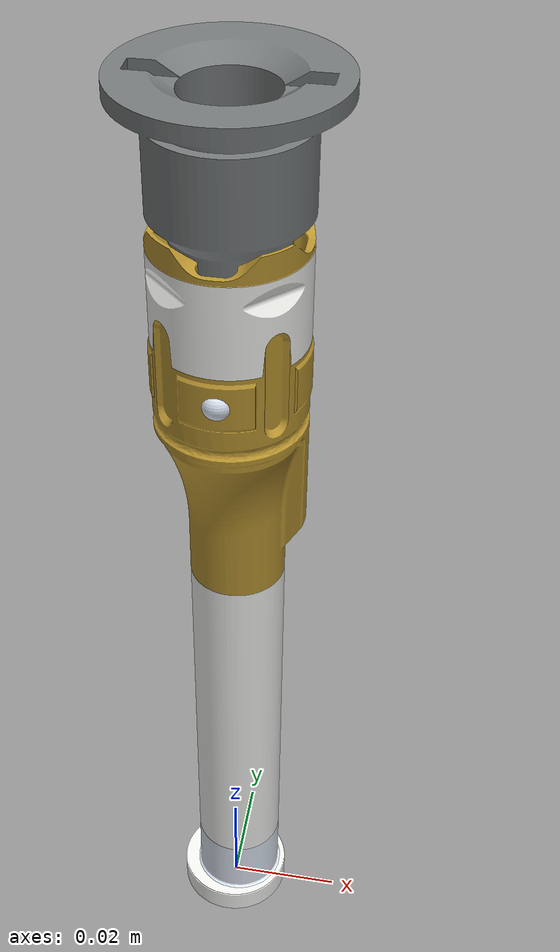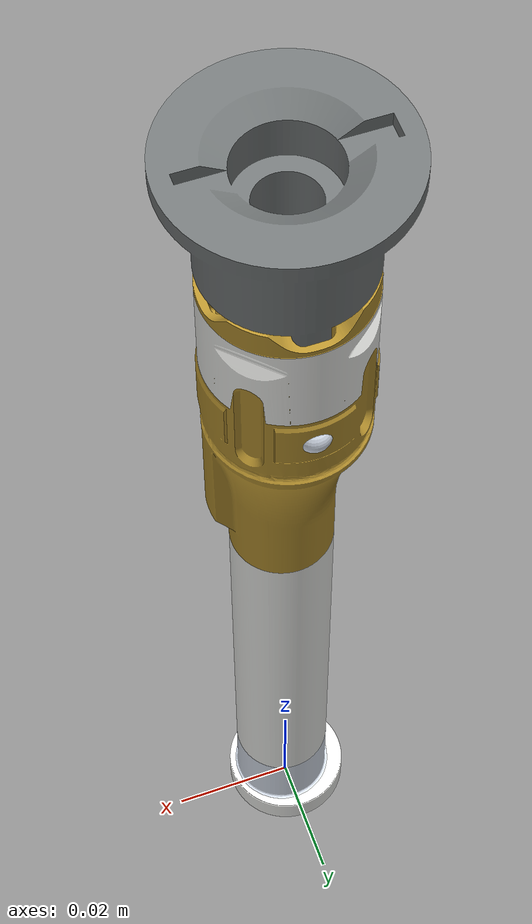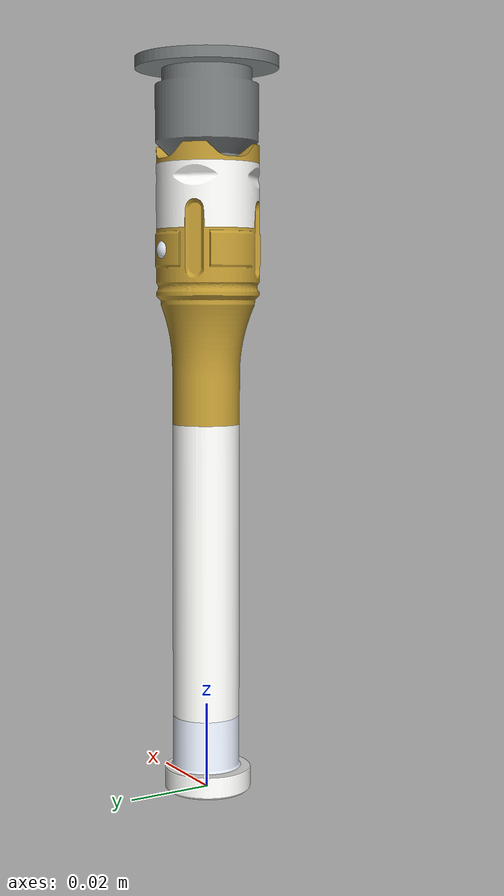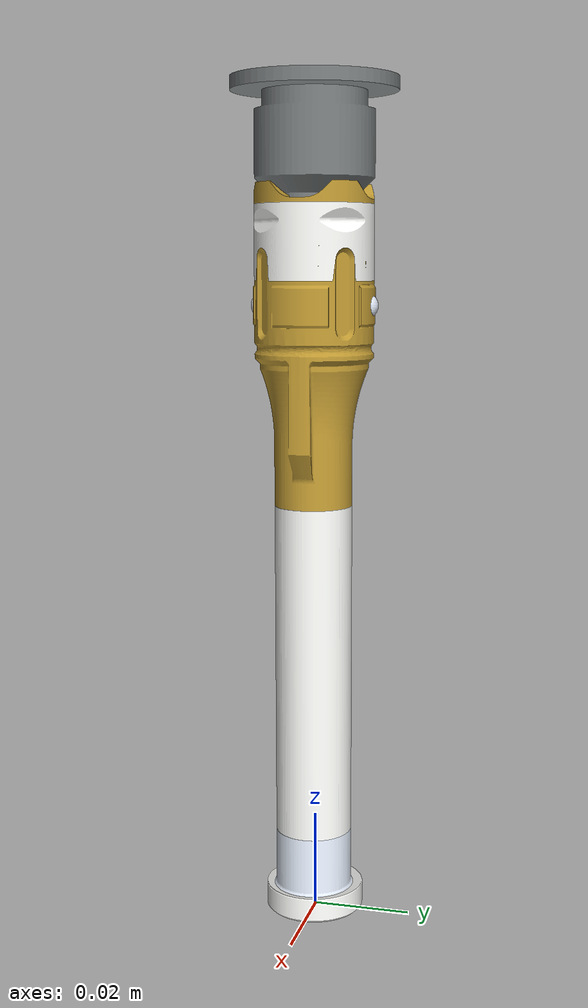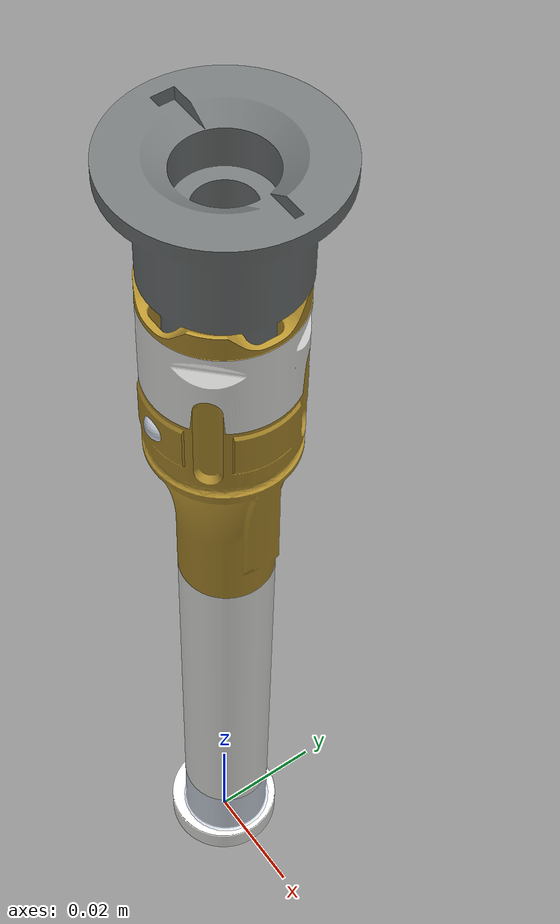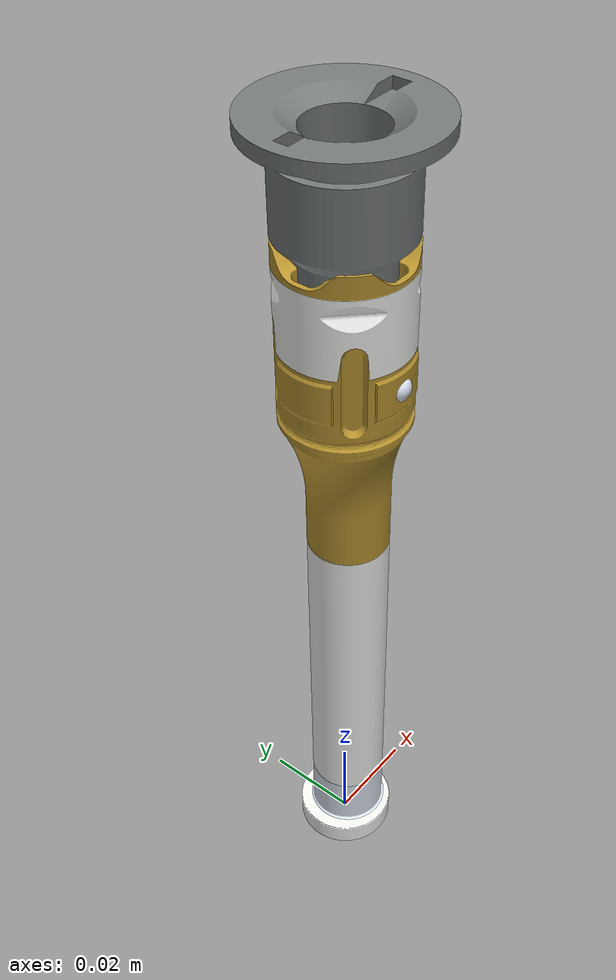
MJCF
<mujoco model="mars_sample_tube">
  <compiler assetdir="../.." />
  <asset>
    <mesh name="part_0" file="space/mars_sample_tube/part_0.obj" />
    <material name="material_0" rgba="0.954572141 0.957333505 0.943002164 1" shininess="0.25" />
    <mesh name="part_1" file="space/mars_sample_tube/part_1.obj" />
    <material name="material_1" rgba="0.873012304 0.906386435 0.957333505 1" shininess="0.7999999970197678" />
    <mesh name="part_2" file="space/mars_sample_tube/part_2.obj" />
    <material name="material_2" rgba="0.724676967 0.580604255 0.185453981 1" shininess="0.5999999940395355" />
    <mesh name="part_3" file="space/mars_sample_tube/part_3.obj" />
    <material name="material_3" rgba="0.453604221 0.471777856 0.473932147 1" shininess="0.5999999940395355" />
  </asset>
  <worldbody>
    <body name="asset_root">
      <inertial pos="0 0 0.08499999344348907" mass="0.1" diaginertia="0.00024983087 0.000249857319 1.80215967e-05" />
      <geom name="part_0" type="mesh" mesh="part_0" material="material_0" contype="0" conaffinity="0" mass="0" />
      <geom name="part_1" type="mesh" mesh="part_1" material="material_1" contype="0" conaffinity="0" mass="0" />
      <geom name="part_2" type="mesh" mesh="part_2" material="material_2" contype="0" conaffinity="0" mass="0" />
      <geom name="part_3" type="mesh" mesh="part_3" material="material_3" contype="0" conaffinity="0" mass="0" />
    </body>
  </worldbody>
</mujoco>
